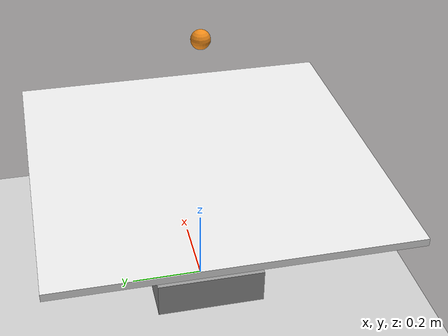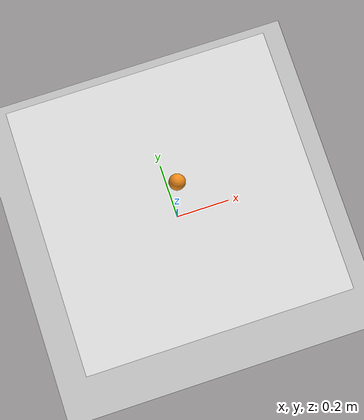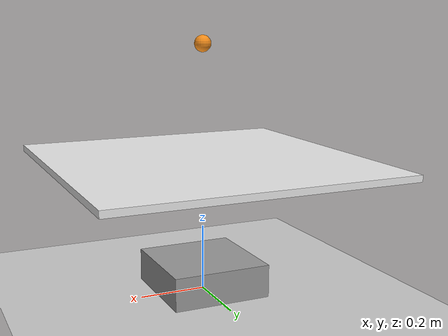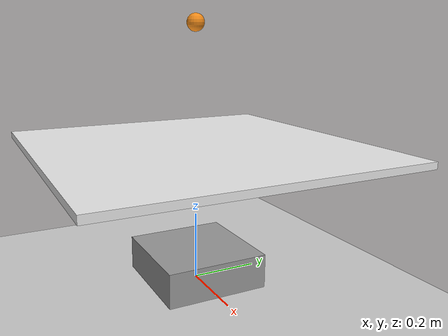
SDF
<?xml version="1.0" ?>
<sdf version="1.6">
  <world name="default">

    <physics type="ode">
       <max_step_size>0.001</max_step_size>
       <real_time_factor>1</real_time_factor>
       <real_time_update_rate>1000</real_time_update_rate>
       <ode>
           <solver>
               <type>quick</type>
               <iters>200</iters>  <sor>1.3</sor>    <use_dynamic_moi_rescaling>false</use_dynamic_moi_rescaling>
           </solver>
           <constraints>
               <cfm>0.0</cfm>
               <erp>0.2</erp>
               <contact_max_correcting_vel>100</contact_max_correcting_vel>
               <contact_surface_layer>0.001</contact_surface_layer>
           </constraints>
       </ode>
    </physics>

    <include><uri>model://sun</uri></include>

    <include><uri>model://ground_plane</uri></include>

    <include>
      <uri>model://tilting_table</uri>
      <name>table_1</name>
      <pose>0 0 0 0 0 0</pose>
    </include>

    <include>
      <uri>model://rolling_ball</uri>
      <name>ball_1</name>
      <pose>0 0 0.15 0 0 0</pose>
    </include>

  </world>
</sdf>

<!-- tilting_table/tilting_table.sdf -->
<sdf version="1.6">
  <model name="tilting_table">
    <static>false</static>

    <!-- Base link: fixed to the world -->
    <link name="base">
      <pose>0 0 0.05 0 0 0</pose>
      <inertial>
        <mass>0.1</mass>
        <inertia>
          <ixx>0.1</ixx> <ixy>0</ixy> <ixz>0</ixz>
          <iyy>0.1</iyy> <iyz>0</iyz>
          <izz>0.1</izz>
        </inertia>
      </inertial>
      <collision name="base_collision">
        <geometry>
          <box>
            <size>0.3 0.3 0.1</size>
          </box>
        </geometry>
        <surface>
          <contact>
            <collide_bitmask>0</collide_bitmask>
          </contact>
        </surface>
      </collision>
      <visual name="base_visual">
        <geometry>
          <box>
            <size>0.3 0.3 0.1</size>
          </box>
        </geometry>
        <material>
          <script>
            <uri>file://media/materials/scripts/gazebo.material</uri>
            <name>Gazebo/Grey</name>
          </script>
        </material>
      </visual>
    </link>

    <!-- Intermediate link for decoupling rotations -->
    <link name="tilt_intermediate">
      <!-- Positioned at the top of the base -->
      <pose>0 0 0.1 0 0 0</pose>
      <inertial>
        <mass>0.02</mass>
        <inertia>
          <ixx>0.005</ixx> <ixy>0</ixy> <ixz>0</ixz>
          <iyy>0.005</iyy> <iyz>0</iyz>
          <izz>0.005</izz>
        </inertia>
      </inertial>
    </link>

    <!-- Plate link: the table top -->
    <link name="plate">
      <!-- Positioned above the intermediate link -->
      <pose>0 0 0.4 0 0 0</pose>
      <inertial>
        <mass>0.1</mass>
        <inertia>
          <ixx>0.01</ixx> <ixy>0</ixy> <ixz>0</ixz>
          <iyy>0.01</iyy> <iyz>0</iyz>
          <izz>0.01</izz>
        </inertia>
      </inertial>
      <collision name="plate_collision">
        <geometry>
          <box>
            <size>0.9 0.9 0.02</size>
          </box>
        </geometry>
        <surface>
          <contact>
            <ode>
              <kp>1e6</kp>
              <kd>100</kd>
            </ode>
          </contact>
          <friction>
            <ode>
              <mu>0.2</mu>
              <mu2>0.2</mu2>
            </ode>
          </friction>
        </surface>
      </collision>
      <visual name="plate_visual">
        <geometry>
          <box>
            <size>0.9 0.9 0.02</size>
          </box>
        </geometry>
        <material>
          <script>
            <uri>file://media/materials/scripts/gazebo.material</uri>
            <name>Gazebo/White</name>
          </script>
        </material>
      </visual>
    </link>

    <!-- Fixed joint connecting the base to the world -->
    <joint name="fixed_base" type="fixed">
      <parent>world</parent>
      <child>base</child>
    </joint>

    <!-- Revolute joint for x-axis tilt (joint_x) -->
    <joint name="joint_x" type="revolute">
      <parent>base</parent>
      <child>tilt_intermediate</child>
      <!-- Joint positioned at the top of the base -->
      <pose>0 0 0.5 0 0 0</pose>
      <axis>
        <xyz>1 0 0</xyz>
        <limit>
          <lower>-0.5</lower>
          <upper>0.5</upper>
          <effort>20</effort>
          <velocity>5</velocity>
        </limit>
        <dynamics>
          <damping>0.5</damping>
        </dynamics>
      </axis>
    </joint>

    <!-- Revolute joint for y-axis tilt (joint_y) -->
    <joint name="joint_y" type="revolute">
      <parent>tilt_intermediate</parent>
      <child>plate</child>
      <!-- Joint positioned at the top of the intermediate link -->
      <pose>0 0 0.1 0 0 0</pose>
      <axis>
        <xyz>0 1 0</xyz>
        <limit>
          <lower>-0.5</lower>
          <upper>0.5</upper>
          <effort>20</effort>
          <velocity>5</velocity>
        </limit>
        <dynamics>
          <damping>0.5</damping>
        </dynamics>
      </axis>
    </joint>

    <!-- Joint state publisher plugin for monitoring -->
    <plugin name="gazebo_ros_joint_state_publisher" filename="libgazebo_ros_joint_state_publisher.so">
      <robotNamespace>/</robotNamespace>
    </plugin>

  </model>
</sdf>

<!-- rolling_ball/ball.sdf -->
<sdf version="1.6">
  <model name="rolling_ball">
    <link name="ball_link">
      <pose>0 0 0.6 0 0 0</pose>
      <inertial>
        <mass>0.1</mass> <inertia>
          <ixx>0.000025</ixx> <ixy>0</ixy> <ixz>0</ixz>
          <iyy>0.000025</iyy> <iyz>0</iyz>
          <izz>0.000025</izz>
        </inertia>
      </inertial>
      <collision name="ball_collision">
        <geometry><sphere><radius>0.025</radius></sphere></geometry> <surface>
          <friction>
            <ode>
              <mu>1.0</mu>    <mu2>1.0</mu2>   </ode>
          </friction>
           <contact>
            <ode>
               <kp>1e4</kp> <kd>10</kd>    <min_depth>0.005</min_depth> <max_vel>0.05</max_vel>   </ode>
          </contact>
        </surface>
      </collision>
      <visual name="ball_visual">
        <geometry><sphere><radius>0.025</radius></sphere></geometry>
        <material><script><uri>file://media/materials/scripts/gazebo.material</uri><name>Gazebo/Orange</name></script></material>
      </visual>
    </link>
  </model>
</sdf>
